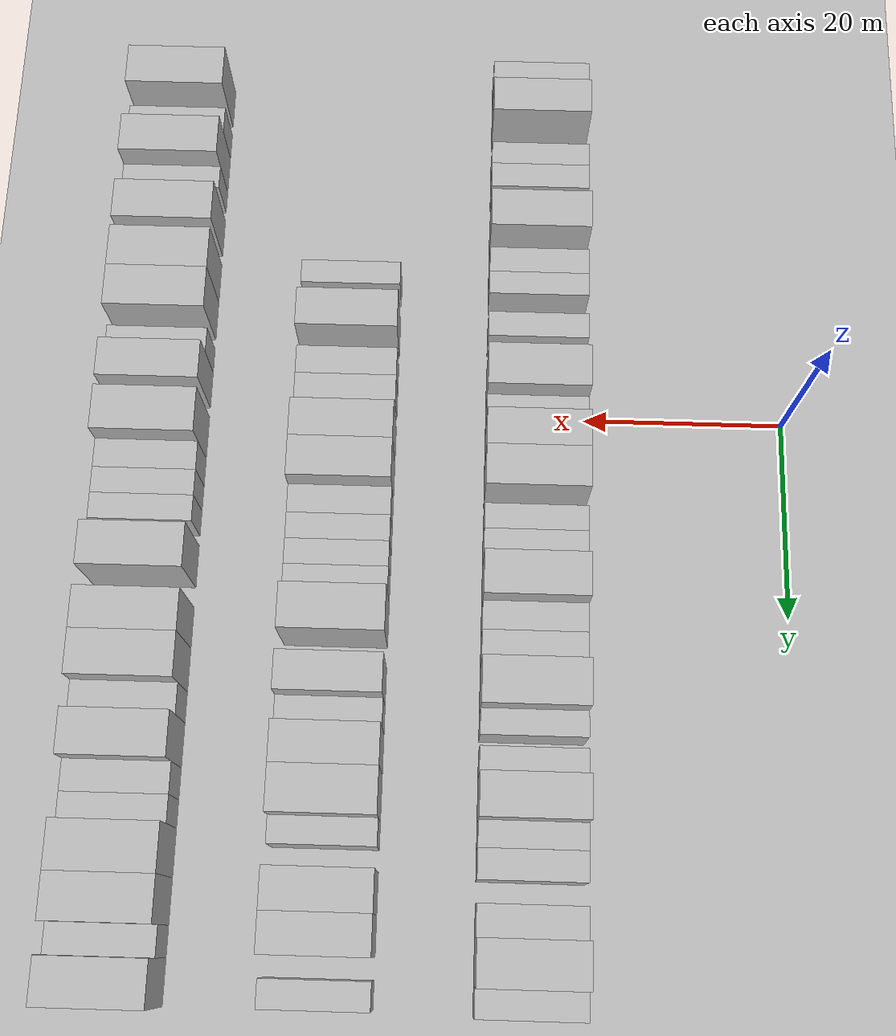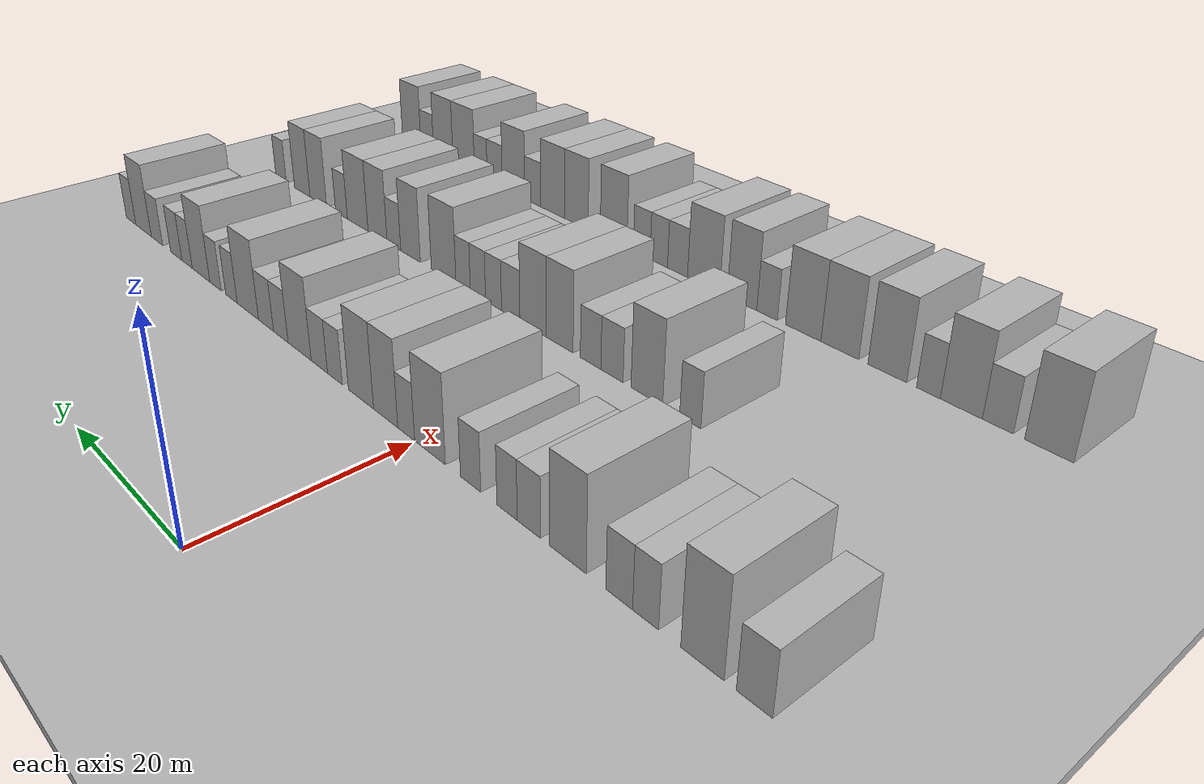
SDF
<sdf version="1.6">
 <world name="default">
  <include><name>ground_plane_1</name><uri>model://HANNAS_ground_plane</uri></include>
  <include>
   <name>ground_plane_2</name>
   <uri>model://HANNAS_ground_plane</uri>
   <pose>100 0 0  0 0 0</pose>
  </include>
  <model name="building_47">
   <static>1</static>
   <pose>25.0000 -36.6404 0 0.000000 0.000000 0.000000</pose>
   <link name="link">
    <pose>0 0 3.00 0 0 0</pose>
    <collision name="collision"><geometry><box><size>10.0000 2.9060 6.0000</size></box></geometry></collision>
    <visual name="visual">
     <cast_shadows>0</cast_shadows>
     <geometry><box><size>10.0000 2.9060 6.0000</size></box></geometry>
     <material>
      <script>
       <uri>model://HANNAS_wall/materials/scripts</uri>
       <uri>model://HANNAS_wall/materials/textures</uri>
       <name>vrc/HANNAS_wall</name>
      </script>
     </material>
    </visual>
   </link>
  </model>
  <model name="building_48">
   <static>1</static>
   <pose>25.0000 -32.3135 0 0.000000 0.000000 0.000000</pose>
   <link name="link">
    <pose>0 0 4.50 0 0 0</pose>
    <collision name="collision"><geometry><box><size>10.0000 3.7478 9.0000</size></box></geometry></collision>
    <visual name="visual">
     <cast_shadows>0</cast_shadows>
     <geometry><box><size>10.0000 3.7478 9.0000</size></box></geometry>
     <material>
      <script>
       <uri>model://HANNAS_wall/materials/scripts</uri>
       <uri>model://HANNAS_wall/materials/textures</uri>
       <name>vrc/HANNAS_wall</name>
      </script>
     </material>
    </visual>
   </link>
  </model>
  <model name="building_49">
   <static>1</static>
   <pose>25.0000 -27.2112 0 0.000000 0.000000 0.000000</pose>
   <link name="link">
    <pose>0 0 3.00 0 0 0</pose>
    <collision name="collision"><geometry><box><size>10.0000 2.4567 6.0000</size></box></geometry></collision>
    <visual name="visual">
     <cast_shadows>0</cast_shadows>
     <geometry><box><size>10.0000 2.4567 6.0000</size></box></geometry>
     <material>
      <script>
       <uri>model://HANNAS_wall/materials/scripts</uri>
       <uri>model://HANNAS_wall/materials/textures</uri>
       <name>vrc/HANNAS_wall</name>
      </script>
     </material>
    </visual>
   </link>
  </model>
  <model name="building_50">
   <static>1</static>
   <pose>25.0000 -24.6619 0 0.000000 0.000000 0.000000</pose>
   <link name="link">
    <pose>0 0 3.00 0 0 0</pose>
    <collision name="collision"><geometry><box><size>10.0000 2.6419 6.0000</size></box></geometry></collision>
    <visual name="visual">
     <cast_shadows>0</cast_shadows>
     <geometry><box><size>10.0000 2.6419 6.0000</size></box></geometry>
     <material>
      <script>
       <uri>model://HANNAS_wall/materials/scripts</uri>
       <uri>model://HANNAS_wall/materials/textures</uri>
       <name>vrc/HANNAS_wall</name>
      </script>
     </material>
    </visual>
   </link>
  </model>
  <model name="building_51">
   <static>1</static>
   <pose>25.0000 -19.3618 0 0.000000 0.000000 0.000000</pose>
   <link name="link">
    <pose>0 0 4.50 0 0 0</pose>
    <collision name="collision"><geometry><box><size>10.0000 3.9584 9.0000</size></box></geometry></collision>
    <visual name="visual">
     <cast_shadows>0</cast_shadows>
     <geometry><box><size>10.0000 3.9584 9.0000</size></box></geometry>
     <material>
      <script>
       <uri>model://HANNAS_wall/materials/scripts</uri>
       <uri>model://HANNAS_wall/materials/textures</uri>
       <name>vrc/HANNAS_wall</name>
      </script>
     </material>
    </visual>
   </link>
  </model>
  <model name="building_52">
   <static>1</static>
   <pose>25.0000 -15.0458 0 0.000000 0.000000 0.000000</pose>
   <link name="link">
    <pose>0 0 3.00 0 0 0</pose>
    <collision name="collision"><geometry><box><size>10.0000 2.6736 6.0000</size></box></geometry></collision>
    <visual name="visual">
     <cast_shadows>0</cast_shadows>
     <geometry><box><size>10.0000 2.6736 6.0000</size></box></geometry>
     <material>
      <script>
       <uri>model://HANNAS_wall/materials/scripts</uri>
       <uri>model://HANNAS_wall/materials/textures</uri>
       <name>vrc/HANNAS_wall</name>
      </script>
     </material>
    </visual>
   </link>
  </model>
  <model name="building_53">
   <static>1</static>
   <pose>25.0000 -12.4975 0 0.000000 0.000000 0.000000</pose>
   <link name="link">
    <pose>0 0 3.00 0 0 0</pose>
    <collision name="collision"><geometry><box><size>10.0000 2.4231 6.0000</size></box></geometry></collision>
    <visual name="visual">
     <cast_shadows>0</cast_shadows>
     <geometry><box><size>10.0000 2.4231 6.0000</size></box></geometry>
     <material>
      <script>
       <uri>model://HANNAS_wall/materials/scripts</uri>
       <uri>model://HANNAS_wall/materials/textures</uri>
       <name>vrc/HANNAS_wall</name>
      </script>
     </material>
    </visual>
   </link>
  </model>
  <model name="building_54">
   <static>1</static>
   <pose>25.0000 -7.9847 0 0.000000 0.000000 0.000000</pose>
   <link name="link">
    <pose>0 0 3.00 0 0 0</pose>
    <collision name="collision"><geometry><box><size>10.0000 2.6025 6.0000</size></box></geometry></collision>
    <visual name="visual">
     <cast_shadows>0</cast_shadows>
     <geometry><box><size>10.0000 2.6025 6.0000</size></box></geometry>
     <material>
      <script>
       <uri>model://HANNAS_wall/materials/scripts</uri>
       <uri>model://HANNAS_wall/materials/textures</uri>
       <name>vrc/HANNAS_wall</name>
      </script>
     </material>
    </visual>
   </link>
  </model>
  <model name="building_55">
   <static>1</static>
   <pose>25.0000 -2.5593 0 0.000000 0.000000 0.000000</pose>
   <link name="link">
    <pose>0 0 4.50 0 0 0</pose>
    <collision name="collision"><geometry><box><size>10.0000 4.2482 9.0000</size></box></geometry></collision>
    <visual name="visual">
     <cast_shadows>0</cast_shadows>
     <geometry><box><size>10.0000 4.2482 9.0000</size></box></geometry>
     <material>
      <script>
       <uri>model://HANNAS_wall/materials/scripts</uri>
       <uri>model://HANNAS_wall/materials/textures</uri>
       <name>vrc/HANNAS_wall</name>
      </script>
     </material>
    </visual>
   </link>
  </model>
  <model name="building_56">
   <static>1</static>
   <pose>25.0000 0.7866 0 0.000000 0.000000 0.000000</pose>
   <link name="link">
    <pose>0 0 3.00 0 0 0</pose>
    <collision name="collision"><geometry><box><size>10.0000 2.4436 6.0000</size></box></geometry></collision>
    <visual name="visual">
     <cast_shadows>0</cast_shadows>
     <geometry><box><size>10.0000 2.4436 6.0000</size></box></geometry>
     <material>
      <script>
       <uri>model://HANNAS_wall/materials/scripts</uri>
       <uri>model://HANNAS_wall/materials/textures</uri>
       <name>vrc/HANNAS_wall</name>
      </script>
     </material>
    </visual>
   </link>
  </model>
  <model name="building_57">
   <static>1</static>
   <pose>25.0000 3.8485 0 0.000000 0.000000 0.000000</pose>
   <link name="link">
    <pose>0 0 4.50 0 0 0</pose>
    <collision name="collision"><geometry><box><size>10.0000 3.6801 9.0000</size></box></geometry></collision>
    <visual name="visual">
     <cast_shadows>0</cast_shadows>
     <geometry><box><size>10.0000 3.6801 9.0000</size></box></geometry>
     <material>
      <script>
       <uri>model://HANNAS_wall/materials/scripts</uri>
       <uri>model://HANNAS_wall/materials/textures</uri>
       <name>vrc/HANNAS_wall</name>
      </script>
     </material>
    </visual>
   </link>
  </model>
  <model name="building_58">
   <static>1</static>
   <pose>25.0000 7.6979 0 0.000000 0.000000 0.000000</pose>
   <link name="link">
    <pose>0 0 4.50 0 0 0</pose>
    <collision name="collision"><geometry><box><size>10.0000 4.0188 9.0000</size></box></geometry></collision>
    <visual name="visual">
     <cast_shadows>0</cast_shadows>
     <geometry><box><size>10.0000 4.0188 9.0000</size></box></geometry>
     <material>
      <script>
       <uri>model://HANNAS_wall/materials/scripts</uri>
       <uri>model://HANNAS_wall/materials/textures</uri>
       <name>vrc/HANNAS_wall</name>
      </script>
     </material>
    </visual>
   </link>
  </model>
  <model name="building_59">
   <static>1</static>
   <pose>25.0000 11.9640 0 0.000000 0.000000 0.000000</pose>
   <link name="link">
    <pose>0 0 3.00 0 0 0</pose>
    <collision name="collision"><geometry><box><size>10.0000 2.5134 6.0000</size></box></geometry></collision>
    <visual name="visual">
     <cast_shadows>0</cast_shadows>
     <geometry><box><size>10.0000 2.5134 6.0000</size></box></geometry>
     <material>
      <script>
       <uri>model://HANNAS_wall/materials/scripts</uri>
       <uri>model://HANNAS_wall/materials/textures</uri>
       <name>vrc/HANNAS_wall</name>
      </script>
     </material>
    </visual>
   </link>
  </model>
  <model name="building_60">
   <static>1</static>
   <pose>25.0000 14.6396 0 0.000000 0.000000 0.000000</pose>
   <link name="link">
    <pose>0 0 3.00 0 0 0</pose>
    <collision name="collision"><geometry><box><size>10.0000 2.8378 6.0000</size></box></geometry></collision>
    <visual name="visual">
     <cast_shadows>0</cast_shadows>
     <geometry><box><size>10.0000 2.8378 6.0000</size></box></geometry>
     <material>
      <script>
       <uri>model://HANNAS_wall/materials/scripts</uri>
       <uri>model://HANNAS_wall/materials/textures</uri>
       <name>vrc/HANNAS_wall</name>
      </script>
     </material>
    </visual>
   </link>
  </model>
  <model name="building_61">
   <static>1</static>
   <pose>25.0000 18.1646 0 0.000000 0.000000 0.000000</pose>
   <link name="link">
    <pose>0 0 4.50 0 0 0</pose>
    <collision name="collision"><geometry><box><size>10.0000 4.2121 9.0000</size></box></geometry></collision>
    <visual name="visual">
     <cast_shadows>0</cast_shadows>
     <geometry><box><size>10.0000 4.2121 9.0000</size></box></geometry>
     <material>
      <script>
       <uri>model://HANNAS_wall/materials/scripts</uri>
       <uri>model://HANNAS_wall/materials/textures</uri>
       <name>vrc/HANNAS_wall</name>
      </script>
     </material>
    </visual>
   </link>
  </model>
  <model name="building_62">
   <static>1</static>
   <pose>25.0000 21.6608 0 0.000000 0.000000 0.000000</pose>
   <link name="link">
    <pose>0 0 3.00 0 0 0</pose>
    <collision name="collision"><geometry><box><size>10.0000 2.7804 6.0000</size></box></geometry></collision>
    <visual name="visual">
     <cast_shadows>0</cast_shadows>
     <geometry><box><size>10.0000 2.7804 6.0000</size></box></geometry>
     <material>
      <script>
       <uri>model://HANNAS_wall/materials/scripts</uri>
       <uri>model://HANNAS_wall/materials/textures</uri>
       <name>vrc/HANNAS_wall</name>
      </script>
     </material>
    </visual>
   </link>
  </model>
  <model name="building_63">
   <static>1</static>
   <pose>25.0000 24.5273 0 0.000000 0.000000 0.000000</pose>
   <link name="link">
    <pose>0 0 3.00 0 0 0</pose>
    <collision name="collision"><geometry><box><size>10.0000 2.9526 6.0000</size></box></geometry></collision>
    <visual name="visual">
     <cast_shadows>0</cast_shadows>
     <geometry><box><size>10.0000 2.9526 6.0000</size></box></geometry>
     <material>
      <script>
       <uri>model://HANNAS_wall/materials/scripts</uri>
       <uri>model://HANNAS_wall/materials/textures</uri>
       <name>vrc/HANNAS_wall</name>
      </script>
     </material>
    </visual>
   </link>
  </model>
  <model name="building_64">
   <static>1</static>
   <pose>25.0000 28.2015 0 0.000000 0.000000 0.000000</pose>
   <link name="link">
    <pose>0 0 4.50 0 0 0</pose>
    <collision name="collision"><geometry><box><size>10.0000 4.3956 9.0000</size></box></geometry></collision>
    <visual name="visual">
     <cast_shadows>0</cast_shadows>
     <geometry><box><size>10.0000 4.3956 9.0000</size></box></geometry>
     <material>
      <script>
       <uri>model://HANNAS_wall/materials/scripts</uri>
       <uri>model://HANNAS_wall/materials/textures</uri>
       <name>vrc/HANNAS_wall</name>
      </script>
     </material>
    </visual>
   </link>
  </model>
  <model name="building_65">
   <static>1</static>
   <pose>25.0000 31.6231 0 0.000000 0.000000 0.000000</pose>
   <link name="link">
    <pose>0 0 3.00 0 0 0</pose>
    <collision name="collision"><geometry><box><size>10.0000 2.4476 6.0000</size></box></geometry></collision>
    <visual name="visual">
     <cast_shadows>0</cast_shadows>
     <geometry><box><size>10.0000 2.4476 6.0000</size></box></geometry>
     <material>
      <script>
       <uri>model://HANNAS_wall/materials/scripts</uri>
       <uri>model://HANNAS_wall/materials/textures</uri>
       <name>vrc/HANNAS_wall</name>
      </script>
     </material>
    </visual>
   </link>
  </model>
  <model name="building_66">
   <static>1</static>
   <pose>25.0000 35.1179 0 0.000000 0.000000 0.000000</pose>
   <link name="link">
    <pose>0 0 3.00 0 0 0</pose>
    <collision name="collision"><geometry><box><size>10.0000 2.5420 6.0000</size></box></geometry></collision>
    <visual name="visual">
     <cast_shadows>0</cast_shadows>
     <geometry><box><size>10.0000 2.5420 6.0000</size></box></geometry>
     <material>
      <script>
       <uri>model://HANNAS_wall/materials/scripts</uri>
       <uri>model://HANNAS_wall/materials/textures</uri>
       <name>vrc/HANNAS_wall</name>
      </script>
     </material>
    </visual>
   </link>
  </model>
  <model name="building_67">
   <static>1</static>
   <pose>25.0000 38.4257 0 0.000000 0.000000 0.000000</pose>
   <link name="link">
    <pose>0 0 4.50 0 0 0</pose>
    <collision name="collision"><geometry><box><size>10.0000 4.0736 9.0000</size></box></geometry></collision>
    <visual name="visual">
     <cast_shadows>0</cast_shadows>
     <geometry><box><size>10.0000 4.0736 9.0000</size></box></geometry>
     <material>
      <script>
       <uri>model://HANNAS_wall/materials/scripts</uri>
       <uri>model://HANNAS_wall/materials/textures</uri>
       <name>vrc/HANNAS_wall</name>
      </script>
     </material>
    </visual>
   </link>
  </model>
  <model name="building_68">
   <static>1</static>
   <pose>25.0000 41.6944 0 0.000000 0.000000 0.000000</pose>
   <link name="link">
    <pose>0 0 3.00 0 0 0</pose>
    <collision name="collision"><geometry><box><size>10.0000 2.4639 6.0000</size></box></geometry></collision>
    <visual name="visual">
     <cast_shadows>0</cast_shadows>
     <geometry><box><size>10.0000 2.4639 6.0000</size></box></geometry>
     <material>
      <script>
       <uri>model://HANNAS_wall/materials/scripts</uri>
       <uri>model://HANNAS_wall/materials/textures</uri>
       <name>vrc/HANNAS_wall</name>
      </script>
     </material>
    </visual>
   </link>
  </model>
  <model name="building_69">
   <static>1</static>
   <pose>25.0000 44.3190 0 0.000000 0.000000 0.000000</pose>
   <link name="link">
    <pose>0 0 3.00 0 0 0</pose>
    <collision name="collision"><geometry><box><size>10.0000 2.7852 6.0000</size></box></geometry></collision>
    <visual name="visual">
     <cast_shadows>0</cast_shadows>
     <geometry><box><size>10.0000 2.7852 6.0000</size></box></geometry>
     <material>
      <script>
       <uri>model://HANNAS_wall/materials/scripts</uri>
       <uri>model://HANNAS_wall/materials/textures</uri>
       <name>vrc/HANNAS_wall</name>
      </script>
     </material>
    </visual>
   </link>
  </model>
  <model name="building_70">
   <static>1</static>
   <pose>25.0000 49.1778 0 0.000000 0.000000 0.000000</pose>
   <link name="link">
    <pose>0 0 3.00 0 0 0</pose>
    <collision name="collision"><geometry><box><size>10.0000 2.9324 6.0000</size></box></geometry></collision>
    <visual name="visual">
     <cast_shadows>0</cast_shadows>
     <geometry><box><size>10.0000 2.9324 6.0000</size></box></geometry>
     <material>
      <script>
       <uri>model://HANNAS_wall/materials/scripts</uri>
       <uri>model://HANNAS_wall/materials/textures</uri>
       <name>vrc/HANNAS_wall</name>
      </script>
     </material>
    </visual>
   </link>
  </model>
  <model name="building_71">
   <static>1</static>
   <pose>25.0000 52.7363 0 0.000000 0.000000 0.000000</pose>
   <link name="link">
    <pose>0 0 4.50 0 0 0</pose>
    <collision name="collision"><geometry><box><size>10.0000 4.1847 9.0000</size></box></geometry></collision>
    <visual name="visual">
     <cast_shadows>0</cast_shadows>
     <geometry><box><size>10.0000 4.1847 9.0000</size></box></geometry>
     <material>
      <script>
       <uri>model://HANNAS_wall/materials/scripts</uri>
       <uri>model://HANNAS_wall/materials/textures</uri>
       <name>vrc/HANNAS_wall</name>
      </script>
     </material>
    </visual>
   </link>
  </model>
  <model name="building_72">
   <static>1</static>
   <pose>25.0000 56.1334 0 0.000000 0.000000 0.000000</pose>
   <link name="link">
    <pose>0 0 3.00 0 0 0</pose>
    <collision name="collision"><geometry><box><size>10.0000 2.6096 6.0000</size></box></geometry></collision>
    <visual name="visual">
     <cast_shadows>0</cast_shadows>
     <geometry><box><size>10.0000 2.6096 6.0000</size></box></geometry>
     <material>
      <script>
       <uri>model://HANNAS_wall/materials/scripts</uri>
       <uri>model://HANNAS_wall/materials/textures</uri>
       <name>vrc/HANNAS_wall</name>
      </script>
     </material>
    </visual>
   </link>
  </model>
  <model name="building_163">
   <static>1</static>
   <pose>44.0000 -13.1867 0 0.000000 0.000000 0.000000</pose>
   <link name="link">
    <pose>0 0 3.00 0 0 0</pose>
    <collision name="collision"><geometry><box><size>10.0000 2.4471 6.0000</size></box></geometry></collision>
    <visual name="visual">
     <cast_shadows>0</cast_shadows>
     <geometry><box><size>10.0000 2.4471 6.0000</size></box></geometry>
     <material>
      <script>
       <uri>model://HANNAS_wall/materials/scripts</uri>
       <uri>model://HANNAS_wall/materials/textures</uri>
       <name>vrc/HANNAS_wall</name>
      </script>
     </material>
    </visual>
   </link>
  </model>
  <model name="building_164">
   <static>1</static>
   <pose>44.0000 -8.0142 0 0.000000 0.000000 0.000000</pose>
   <link name="link">
    <pose>0 0 4.50 0 0 0</pose>
    <collision name="collision"><geometry><box><size>10.0000 3.8978 9.0000</size></box></geometry></collision>
    <visual name="visual">
     <cast_shadows>0</cast_shadows>
     <geometry><box><size>10.0000 3.8978 9.0000</size></box></geometry>
     <material>
      <script>
       <uri>model://HANNAS_wall/materials/scripts</uri>
       <uri>model://HANNAS_wall/materials/textures</uri>
       <name>vrc/HANNAS_wall</name>
      </script>
     </material>
    </visual>
   </link>
  </model>
  <model name="building_165">
   <static>1</static>
   <pose>44.0000 -3.6147 0 0.000000 0.000000 0.000000</pose>
   <link name="link">
    <pose>0 0 3.00 0 0 0</pose>
    <collision name="collision"><geometry><box><size>10.0000 2.9012 6.0000</size></box></geometry></collision>
    <visual name="visual">
     <cast_shadows>0</cast_shadows>
     <geometry><box><size>10.0000 2.9012 6.0000</size></box></geometry>
     <material>
      <script>
       <uri>model://HANNAS_wall/materials/scripts</uri>
       <uri>model://HANNAS_wall/materials/textures</uri>
       <name>vrc/HANNAS_wall</name>
      </script>
     </material>
    </visual>
   </link>
  </model>
  <model name="building_166">
   <static>1</static>
   <pose>44.0000 -0.7822 0 0.000000 0.000000 0.000000</pose>
   <link name="link">
    <pose>0 0 3.00 0 0 0</pose>
    <collision name="collision"><geometry><box><size>10.0000 2.7638 6.0000</size></box></geometry></collision>
    <visual name="visual">
     <cast_shadows>0</cast_shadows>
     <geometry><box><size>10.0000 2.7638 6.0000</size></box></geometry>
     <material>
      <script>
       <uri>model://HANNAS_wall/materials/scripts</uri>
       <uri>model://HANNAS_wall/materials/textures</uri>
       <name>vrc/HANNAS_wall</name>
      </script>
     </material>
    </visual>
   </link>
  </model>
  <model name="building_167">
   <static>1</static>
   <pose>44.0000 3.4970 0 0.000000 0.000000 0.000000</pose>
   <link name="link">
    <pose>0 0 4.50 0 0 0</pose>
    <collision name="collision"><geometry><box><size>10.0000 3.7946 9.0000</size></box></geometry></collision>
    <visual name="visual">
     <cast_shadows>0</cast_shadows>
     <geometry><box><size>10.0000 3.7946 9.0000</size></box></geometry>
     <material>
      <script>
       <uri>model://HANNAS_wall/materials/scripts</uri>
       <uri>model://HANNAS_wall/materials/textures</uri>
       <name>vrc/HANNAS_wall</name>
      </script>
     </material>
    </visual>
   </link>
  </model>
  <model name="building_168">
   <static>1</static>
   <pose>44.0000 7.3764 0 0.000000 0.000000 0.000000</pose>
   <link name="link">
    <pose>0 0 4.50 0 0 0</pose>
    <collision name="collision"><geometry><box><size>10.0000 3.9643 9.0000</size></box></geometry></collision>
    <visual name="visual">
     <cast_shadows>0</cast_shadows>
     <geometry><box><size>10.0000 3.9643 9.0000</size></box></geometry>
     <material>
      <script>
       <uri>model://HANNAS_wall/materials/scripts</uri>
       <uri>model://HANNAS_wall/materials/textures</uri>
       <name>vrc/HANNAS_wall</name>
      </script>
     </material>
    </visual>
   </link>
  </model>
  <model name="building_169">
   <static>1</static>
   <pose>44.0000 10.7782 0 0.000000 0.000000 0.000000</pose>
   <link name="link">
    <pose>0 0 3.00 0 0 0</pose>
    <collision name="collision"><geometry><box><size>10.0000 2.8393 6.0000</size></box></geometry></collision>
    <visual name="visual">
     <cast_shadows>0</cast_shadows>
     <geometry><box><size>10.0000 2.8393 6.0000</size></box></geometry>
     <material>
      <script>
       <uri>model://HANNAS_wall/materials/scripts</uri>
       <uri>model://HANNAS_wall/materials/textures</uri>
       <name>vrc/HANNAS_wall</name>
      </script>
     </material>
    </visual>
   </link>
  </model>
  <model name="building_170">
   <static>1</static>
   <pose>44.0000 13.4813 0 0.000000 0.000000 0.000000</pose>
   <link name="link">
    <pose>0 0 3.00 0 0 0</pose>
    <collision name="collision"><geometry><box><size>10.0000 2.5668 6.0000</size></box></geometry></collision>
    <visual name="visual">
     <cast_shadows>0</cast_shadows>
     <geometry><box><size>10.0000 2.5668 6.0000</size></box></geometry>
     <material>
      <script>
       <uri>model://HANNAS_wall/materials/scripts</uri>
       <uri>model://HANNAS_wall/materials/textures</uri>
       <name>vrc/HANNAS_wall</name>
      </script>
     </material>
    </visual>
   </link>
  </model>
  <model name="building_171">
   <static>1</static>
   <pose>44.0000 16.0193 0 0.000000 0.000000 0.000000</pose>
   <link name="link">
    <pose>0 0 3.00 0 0 0</pose>
    <collision name="collision"><geometry><box><size>10.0000 2.5092 6.0000</size></box></geometry></collision>
    <visual name="visual">
     <cast_shadows>0</cast_shadows>
     <geometry><box><size>10.0000 2.5092 6.0000</size></box></geometry>
     <material>
      <script>
       <uri>model://HANNAS_wall/materials/scripts</uri>
       <uri>model://HANNAS_wall/materials/textures</uri>
       <name>vrc/HANNAS_wall</name>
      </script>
     </material>
    </visual>
   </link>
  </model>
  <model name="building_172">
   <static>1</static>
   <pose>44.0000 18.4997 0 0.000000 0.000000 0.000000</pose>
   <link name="link">
    <pose>0 0 3.00 0 0 0</pose>
    <collision name="collision"><geometry><box><size>10.0000 2.4517 6.0000</size></box></geometry></collision>
    <visual name="visual">
     <cast_shadows>0</cast_shadows>
     <geometry><box><size>10.0000 2.4517 6.0000</size></box></geometry>
     <material>
      <script>
       <uri>model://HANNAS_wall/materials/scripts</uri>
       <uri>model://HANNAS_wall/materials/textures</uri>
       <name>vrc/HANNAS_wall</name>
      </script>
     </material>
    </visual>
   </link>
  </model>
  <model name="building_173">
   <static>1</static>
   <pose>44.0000 21.8963 0 0.000000 0.000000 0.000000</pose>
   <link name="link">
    <pose>0 0 4.50 0 0 0</pose>
    <collision name="collision"><geometry><box><size>10.0000 4.3415 9.0000</size></box></geometry></collision>
    <visual name="visual">
     <cast_shadows>0</cast_shadows>
     <geometry><box><size>10.0000 4.3415 9.0000</size></box></geometry>
     <material>
      <script>
       <uri>model://HANNAS_wall/materials/scripts</uri>
       <uri>model://HANNAS_wall/materials/textures</uri>
       <name>vrc/HANNAS_wall</name>
      </script>
     </material>
    </visual>
   </link>
  </model>
  <model name="building_174">
   <static>1</static>
   <pose>44.0000 27.9106 0 0.000000 0.000000 0.000000</pose>
   <link name="link">
    <pose>0 0 4.50 0 0 0</pose>
    <collision name="collision"><geometry><box><size>10.0000 3.6871 9.0000</size></box></geometry></collision>
    <visual name="visual">
     <cast_shadows>0</cast_shadows>
     <geometry><box><size>10.0000 3.6871 9.0000</size></box></geometry>
     <material>
      <script>
       <uri>model://HANNAS_wall/materials/scripts</uri>
       <uri>model://HANNAS_wall/materials/textures</uri>
       <name>vrc/HANNAS_wall</name>
      </script>
     </material>
    </visual>
   </link>
  </model>
  <model name="building_175">
   <static>1</static>
   <pose>44.0000 31.0799 0 0.000000 0.000000 0.000000</pose>
   <link name="link">
    <pose>0 0 3.00 0 0 0</pose>
    <collision name="collision"><geometry><box><size>10.0000 2.6515 6.0000</size></box></geometry></collision>
    <visual name="visual">
     <cast_shadows>0</cast_shadows>
     <geometry><box><size>10.0000 2.6515 6.0000</size></box></geometry>
     <material>
      <script>
       <uri>model://HANNAS_wall/materials/scripts</uri>
       <uri>model://HANNAS_wall/materials/textures</uri>
       <name>vrc/HANNAS_wall</name>
      </script>
     </material>
    </visual>
   </link>
  </model>
  <model name="building_176">
   <static>1</static>
   <pose>44.0000 34.3299 0 0.000000 0.000000 0.000000</pose>
   <link name="link">
    <pose>0 0 4.50 0 0 0</pose>
    <collision name="collision"><geometry><box><size>10.0000 3.8486 9.0000</size></box></geometry></collision>
    <visual name="visual">
     <cast_shadows>0</cast_shadows>
     <geometry><box><size>10.0000 3.8486 9.0000</size></box></geometry>
     <material>
      <script>
       <uri>model://HANNAS_wall/materials/scripts</uri>
       <uri>model://HANNAS_wall/materials/textures</uri>
       <name>vrc/HANNAS_wall</name>
      </script>
     </material>
    </visual>
   </link>
  </model>
  <model name="building_177">
   <static>1</static>
   <pose>44.0000 38.4227 0 0.000000 0.000000 0.000000</pose>
   <link name="link">
    <pose>0 0 4.50 0 0 0</pose>
    <collision name="collision"><geometry><box><size>10.0000 4.3371 9.0000</size></box></geometry></collision>
    <visual name="visual">
     <cast_shadows>0</cast_shadows>
     <geometry><box><size>10.0000 4.3371 9.0000</size></box></geometry>
     <material>
      <script>
       <uri>model://HANNAS_wall/materials/scripts</uri>
       <uri>model://HANNAS_wall/materials/textures</uri>
       <name>vrc/HANNAS_wall</name>
      </script>
     </material>
    </visual>
   </link>
  </model>
  <model name="building_178">
   <static>1</static>
   <pose>44.0000 41.8672 0 0.000000 0.000000 0.000000</pose>
   <link name="link">
    <pose>0 0 3.00 0 0 0</pose>
    <collision name="collision"><geometry><box><size>10.0000 2.5519 6.0000</size></box></geometry></collision>
    <visual name="visual">
     <cast_shadows>0</cast_shadows>
     <geometry><box><size>10.0000 2.5519 6.0000</size></box></geometry>
     <material>
      <script>
       <uri>model://HANNAS_wall/materials/scripts</uri>
       <uri>model://HANNAS_wall/materials/textures</uri>
       <name>vrc/HANNAS_wall</name>
      </script>
     </material>
    </visual>
   </link>
  </model>
  <model name="building_179">
   <static>1</static>
   <pose>44.0000 47.0436 0 0.000000 0.000000 0.000000</pose>
   <link name="link">
    <pose>0 0 4.50 0 0 0</pose>
    <collision name="collision"><geometry><box><size>10.0000 3.8009 9.0000</size></box></geometry></collision>
    <visual name="visual">
     <cast_shadows>0</cast_shadows>
     <geometry><box><size>10.0000 3.8009 9.0000</size></box></geometry>
     <material>
      <script>
       <uri>model://HANNAS_wall/materials/scripts</uri>
       <uri>model://HANNAS_wall/materials/textures</uri>
       <name>vrc/HANNAS_wall</name>
      </script>
     </material>
    </visual>
   </link>
  </model>
  <model name="building_180">
   <static>1</static>
   <pose>44.0000 50.7753 0 0.000000 0.000000 0.000000</pose>
   <link name="link">
    <pose>0 0 4.50 0 0 0</pose>
    <collision name="collision"><geometry><box><size>10.0000 3.6625 9.0000</size></box></geometry></collision>
    <visual name="visual">
     <cast_shadows>0</cast_shadows>
     <geometry><box><size>10.0000 3.6625 9.0000</size></box></geometry>
     <material>
      <script>
       <uri>model://HANNAS_wall/materials/scripts</uri>
       <uri>model://HANNAS_wall/materials/textures</uri>
       <name>vrc/HANNAS_wall</name>
      </script>
     </material>
    </visual>
   </link>
  </model>
  <model name="building_181">
   <static>1</static>
   <pose>44.0000 55.8891 0 0.000000 0.000000 0.000000</pose>
   <link name="link">
    <pose>0 0 3.00 0 0 0</pose>
    <collision name="collision"><geometry><box><size>10.0000 2.5652 6.0000</size></box></geometry></collision>
    <visual name="visual">
     <cast_shadows>0</cast_shadows>
     <geometry><box><size>10.0000 2.5652 6.0000</size></box></geometry>
     <material>
      <script>
       <uri>model://HANNAS_wall/materials/scripts</uri>
       <uri>model://HANNAS_wall/materials/textures</uri>
       <name>vrc/HANNAS_wall</name>
      </script>
     </material>
    </visual>
   </link>
  </model>
  <model name="building_282">
   <static>1</static>
   <pose>63.0000 -34.7589 0 0.000000 0.000000 0.000000</pose>
   <link name="link">
    <pose>0 0 4.50 0 0 0</pose>
    <collision name="collision"><geometry><box><size>10.0000 4.2598 9.0000</size></box></geometry></collision>
    <visual name="visual">
     <cast_shadows>0</cast_shadows>
     <geometry><box><size>10.0000 4.2598 9.0000</size></box></geometry>
     <material>
      <script>
       <uri>model://HANNAS_wall/materials/scripts</uri>
       <uri>model://HANNAS_wall/materials/textures</uri>
       <name>vrc/HANNAS_wall</name>
      </script>
     </material>
    </visual>
   </link>
  </model>
  <model name="building_283">
   <static>1</static>
   <pose>63.0000 -30.2052 0 0.000000 0.000000 0.000000</pose>
   <link name="link">
    <pose>0 0 3.00 0 0 0</pose>
    <collision name="collision"><geometry><box><size>10.0000 2.8475 6.0000</size></box></geometry></collision>
    <visual name="visual">
     <cast_shadows>0</cast_shadows>
     <geometry><box><size>10.0000 2.8475 6.0000</size></box></geometry>
     <material>
      <script>
       <uri>model://HANNAS_wall/materials/scripts</uri>
       <uri>model://HANNAS_wall/materials/textures</uri>
       <name>vrc/HANNAS_wall</name>
      </script>
     </material>
    </visual>
   </link>
  </model>
  <model name="building_284">
   <static>1</static>
   <pose>63.0000 -26.7538 0 0.000000 0.000000 0.000000</pose>
   <link name="link">
    <pose>0 0 4.50 0 0 0</pose>
    <collision name="collision"><geometry><box><size>10.0000 4.0553 9.0000</size></box></geometry></collision>
    <visual name="visual">
     <cast_shadows>0</cast_shadows>
     <geometry><box><size>10.0000 4.0553 9.0000</size></box></geometry>
     <material>
      <script>
       <uri>model://HANNAS_wall/materials/scripts</uri>
       <uri>model://HANNAS_wall/materials/textures</uri>
       <name>vrc/HANNAS_wall</name>
      </script>
     </material>
    </visual>
   </link>
  </model>
  <model name="building_285">
   <static>1</static>
   <pose>63.0000 -23.5254 0 0.000000 0.000000 0.000000</pose>
   <link name="link">
    <pose>0 0 3.00 0 0 0</pose>
    <collision name="collision"><geometry><box><size>10.0000 2.4015 6.0000</size></box></geometry></collision>
    <visual name="visual">
     <cast_shadows>0</cast_shadows>
     <geometry><box><size>10.0000 2.4015 6.0000</size></box></geometry>
     <material>
      <script>
       <uri>model://HANNAS_wall/materials/scripts</uri>
       <uri>model://HANNAS_wall/materials/textures</uri>
       <name>vrc/HANNAS_wall</name>
      </script>
     </material>
    </visual>
   </link>
  </model>
  <model name="building_286">
   <static>1</static>
   <pose>63.0000 -19.2608 0 0.000000 0.000000 0.000000</pose>
   <link name="link">
    <pose>0 0 4.50 0 0 0</pose>
    <collision name="collision"><geometry><box><size>10.0000 4.1278 9.0000</size></box></geometry></collision>
    <visual name="visual">
     <cast_shadows>0</cast_shadows>
     <geometry><box><size>10.0000 4.1278 9.0000</size></box></geometry>
     <material>
      <script>
       <uri>model://HANNAS_wall/materials/scripts</uri>
       <uri>model://HANNAS_wall/materials/textures</uri>
       <name>vrc/HANNAS_wall</name>
      </script>
     </material>
    </visual>
   </link>
  </model>
  <model name="building_287">
   <static>1</static>
   <pose>63.0000 -14.0470 0 0.000000 0.000000 0.000000</pose>
   <link name="link">
    <pose>0 0 4.50 0 0 0</pose>
    <collision name="collision"><geometry><box><size>10.0000 4.2997 9.0000</size></box></geometry></collision>
    <visual name="visual">
     <cast_shadows>0</cast_shadows>
     <geometry><box><size>10.0000 4.2997 9.0000</size></box></geometry>
     <material>
      <script>
       <uri>model://HANNAS_wall/materials/scripts</uri>
       <uri>model://HANNAS_wall/materials/textures</uri>
       <name>vrc/HANNAS_wall</name>
      </script>
     </material>
    </visual>
   </link>
  </model>
  <model name="building_288">
   <static>1</static>
   <pose>63.0000 -9.7753 0 0.000000 0.000000 0.000000</pose>
   <link name="link">
    <pose>0 0 4.50 0 0 0</pose>
    <collision name="collision"><geometry><box><size>10.0000 4.2436 9.0000</size></box></geometry></collision>
    <visual name="visual">
     <cast_shadows>0</cast_shadows>
     <geometry><box><size>10.0000 4.2436 9.0000</size></box></geometry>
     <material>
      <script>
       <uri>model://HANNAS_wall/materials/scripts</uri>
       <uri>model://HANNAS_wall/materials/textures</uri>
       <name>vrc/HANNAS_wall</name>
      </script>
     </material>
    </visual>
   </link>
  </model>
  <model name="building_289">
   <static>1</static>
   <pose>63.0000 -5.3590 0 0.000000 0.000000 0.000000</pose>
   <link name="link">
    <pose>0 0 3.00 0 0 0</pose>
    <collision name="collision"><geometry><box><size>10.0000 2.5890 6.0000</size></box></geometry></collision>
    <visual name="visual">
     <cast_shadows>0</cast_shadows>
     <geometry><box><size>10.0000 2.5890 6.0000</size></box></geometry>
     <material>
      <script>
       <uri>model://HANNAS_wall/materials/scripts</uri>
       <uri>model://HANNAS_wall/materials/textures</uri>
       <name>vrc/HANNAS_wall</name>
      </script>
     </material>
    </visual>
   </link>
  </model>
  <model name="building_290">
   <static>1</static>
   <pose>63.0000 -2.1242 0 0.000000 0.000000 0.000000</pose>
   <link name="link">
    <pose>0 0 4.50 0 0 0</pose>
    <collision name="collision"><geometry><box><size>10.0000 3.8808 9.0000</size></box></geometry></collision>
    <visual name="visual">
     <cast_shadows>0</cast_shadows>
     <geometry><box><size>10.0000 3.8808 9.0000</size></box></geometry>
     <material>
      <script>
       <uri>model://HANNAS_wall/materials/scripts</uri>
       <uri>model://HANNAS_wall/materials/textures</uri>
       <name>vrc/HANNAS_wall</name>
      </script>
     </material>
    </visual>
   </link>
  </model>
  <model name="building_291">
   <static>1</static>
   <pose>63.0000 3.0534 0 0.000000 0.000000 0.000000</pose>
   <link name="link">
    <pose>0 0 4.50 0 0 0</pose>
    <collision name="collision"><geometry><box><size>10.0000 4.4744 9.0000</size></box></geometry></collision>
    <visual name="visual">
     <cast_shadows>0</cast_shadows>
     <geometry><box><size>10.0000 4.4744 9.0000</size></box></geometry>
     <material>
      <script>
       <uri>model://HANNAS_wall/materials/scripts</uri>
       <uri>model://HANNAS_wall/materials/textures</uri>
       <name>vrc/HANNAS_wall</name>
      </script>
     </material>
    </visual>
   </link>
  </model>
  <model name="building_292">
   <static>1</static>
   <pose>63.0000 6.7384 0 0.000000 0.000000 0.000000</pose>
   <link name="link">
    <pose>0 0 3.00 0 0 0</pose>
    <collision name="collision"><geometry><box><size>10.0000 2.8956 6.0000</size></box></geometry></collision>
    <visual name="visual">
     <cast_shadows>0</cast_shadows>
     <geometry><box><size>10.0000 2.8956 6.0000</size></box></geometry>
     <material>
      <script>
       <uri>model://HANNAS_wall/materials/scripts</uri>
       <uri>model://HANNAS_wall/materials/textures</uri>
       <name>vrc/HANNAS_wall</name>
      </script>
     </material>
    </visual>
   </link>
  </model>
  <model name="building_293">
   <static>1</static>
   <pose>63.0000 9.4797 0 0.000000 0.000000 0.000000</pose>
   <link name="link">
    <pose>0 0 3.00 0 0 0</pose>
    <collision name="collision"><geometry><box><size>10.0000 2.5870 6.0000</size></box></geometry></collision>
    <visual name="visual">
     <cast_shadows>0</cast_shadows>
     <geometry><box><size>10.0000 2.5870 6.0000</size></box></geometry>
     <material>
      <script>
       <uri>model://HANNAS_wall/materials/scripts</uri>
       <uri>model://HANNAS_wall/materials/textures</uri>
       <name>vrc/HANNAS_wall</name>
      </script>
     </material>
    </visual>
   </link>
  </model>
  <model name="building_294">
   <static>1</static>
   <pose>63.0000 12.0619 0 0.000000 0.000000 0.000000</pose>
   <link name="link">
    <pose>0 0 3.00 0 0 0</pose>
    <collision name="collision"><geometry><box><size>10.0000 2.5773 6.0000</size></box></geometry></collision>
    <visual name="visual">
     <cast_shadows>0</cast_shadows>
     <geometry><box><size>10.0000 2.5773 6.0000</size></box></geometry>
     <material>
      <script>
       <uri>model://HANNAS_wall/materials/scripts</uri>
       <uri>model://HANNAS_wall/materials/textures</uri>
       <name>vrc/HANNAS_wall</name>
      </script>
     </material>
    </visual>
   </link>
  </model>
  <model name="building_295">
   <static>1</static>
   <pose>63.0000 16.4858 0 0.000000 0.000000 0.000000</pose>
   <link name="link">
    <pose>0 0 4.50 0 0 0</pose>
    <collision name="collision"><geometry><box><size>10.0000 4.2705 9.0000</size></box></geometry></collision>
    <visual name="visual">
     <cast_shadows>0</cast_shadows>
     <geometry><box><size>10.0000 4.2705 9.0000</size></box></geometry>
     <material>
      <script>
       <uri>model://HANNAS_wall/materials/scripts</uri>
       <uri>model://HANNAS_wall/materials/textures</uri>
       <name>vrc/HANNAS_wall</name>
      </script>
     </material>
    </visual>
   </link>
  </model>
  <model name="building_296">
   <static>1</static>
   <pose>63.0000 22.6328 0 0.000000 0.000000 0.000000</pose>
   <link name="link">
    <pose>0 0 4.50 0 0 0</pose>
    <collision name="collision"><geometry><box><size>10.0000 4.0236 9.0000</size></box></geometry></collision>
    <visual name="visual">
     <cast_shadows>0</cast_shadows>
     <geometry><box><size>10.0000 4.0236 9.0000</size></box></geometry>
     <material>
      <script>
       <uri>model://HANNAS_wall/materials/scripts</uri>
       <uri>model://HANNAS_wall/materials/textures</uri>
       <name>vrc/HANNAS_wall</name>
      </script>
     </material>
    </visual>
   </link>
  </model>
  <model name="building_297">
   <static>1</static>
   <pose>63.0000 26.7725 0 0.000000 0.000000 0.000000</pose>
   <link name="link">
    <pose>0 0 4.50 0 0 0</pose>
    <collision name="collision"><geometry><box><size>10.0000 4.2557 9.0000</size></box></geometry></collision>
    <visual name="visual">
     <cast_shadows>0</cast_shadows>
     <geometry><box><size>10.0000 4.2557 9.0000</size></box></geometry>
     <material>
      <script>
       <uri>model://HANNAS_wall/materials/scripts</uri>
       <uri>model://HANNAS_wall/materials/textures</uri>
       <name>vrc/HANNAS_wall</name>
      </script>
     </material>
    </visual>
   </link>
  </model>
  <model name="building_298">
   <static>1</static>
   <pose>63.0000 30.3787 0 0.000000 0.000000 0.000000</pose>
   <link name="link">
    <pose>0 0 3.00 0 0 0</pose>
    <collision name="collision"><geometry><box><size>10.0000 2.9568 6.0000</size></box></geometry></collision>
    <visual name="visual">
     <cast_shadows>0</cast_shadows>
     <geometry><box><size>10.0000 2.9568 6.0000</size></box></geometry>
     <material>
      <script>
       <uri>model://HANNAS_wall/materials/scripts</uri>
       <uri>model://HANNAS_wall/materials/textures</uri>
       <name>vrc/HANNAS_wall</name>
      </script>
     </material>
    </visual>
   </link>
  </model>
  <model name="building_299">
   <static>1</static>
   <pose>63.0000 33.9895 0 0.000000 0.000000 0.000000</pose>
   <link name="link">
    <pose>0 0 4.50 0 0 0</pose>
    <collision name="collision"><geometry><box><size>10.0000 4.2648 9.0000</size></box></geometry></collision>
    <visual name="visual">
     <cast_shadows>0</cast_shadows>
     <geometry><box><size>10.0000 4.2648 9.0000</size></box></geometry>
     <material>
      <script>
       <uri>model://HANNAS_wall/materials/scripts</uri>
       <uri>model://HANNAS_wall/materials/textures</uri>
       <name>vrc/HANNAS_wall</name>
      </script>
     </material>
    </visual>
   </link>
  </model>
  <model name="building_300">
   <static>1</static>
   <pose>63.0000 37.6013 0 0.000000 0.000000 0.000000</pose>
   <link name="link">
    <pose>0 0 3.00 0 0 0</pose>
    <collision name="collision"><geometry><box><size>10.0000 2.9587 6.0000</size></box></geometry></collision>
    <visual name="visual">
     <cast_shadows>0</cast_shadows>
     <geometry><box><size>10.0000 2.9587 6.0000</size></box></geometry>
     <material>
      <script>
       <uri>model://HANNAS_wall/materials/scripts</uri>
       <uri>model://HANNAS_wall/materials/textures</uri>
       <name>vrc/HANNAS_wall</name>
      </script>
     </material>
    </visual>
   </link>
  </model>
  <model name="building_301">
   <static>1</static>
   <pose>63.0000 40.3722 0 0.000000 0.000000 0.000000</pose>
   <link name="link">
    <pose>0 0 3.00 0 0 0</pose>
    <collision name="collision"><geometry><box><size>10.0000 2.5832 6.0000</size></box></geometry></collision>
    <visual name="visual">
     <cast_shadows>0</cast_shadows>
     <geometry><box><size>10.0000 2.5832 6.0000</size></box></geometry>
     <material>
      <script>
       <uri>model://HANNAS_wall/materials/scripts</uri>
       <uri>model://HANNAS_wall/materials/textures</uri>
       <name>vrc/HANNAS_wall</name>
      </script>
     </material>
    </visual>
   </link>
  </model>
  <model name="building_302">
   <static>1</static>
   <pose>63.0000 43.9090 0 0.000000 0.000000 0.000000</pose>
   <link name="link">
    <pose>0 0 4.50 0 0 0</pose>
    <collision name="collision"><geometry><box><size>10.0000 4.4905 9.0000</size></box></geometry></collision>
    <visual name="visual">
     <cast_shadows>0</cast_shadows>
     <geometry><box><size>10.0000 4.4905 9.0000</size></box></geometry>
     <material>
      <script>
       <uri>model://HANNAS_wall/materials/scripts</uri>
       <uri>model://HANNAS_wall/materials/textures</uri>
       <name>vrc/HANNAS_wall</name>
      </script>
     </material>
    </visual>
   </link>
  </model>
  <model name="building_303">
   <static>1</static>
   <pose>63.0000 48.2661 0 0.000000 0.000000 0.000000</pose>
   <link name="link">
    <pose>0 0 4.50 0 0 0</pose>
    <collision name="collision"><geometry><box><size>10.0000 4.2237 9.0000</size></box></geometry></collision>
    <visual name="visual">
     <cast_shadows>0</cast_shadows>
     <geometry><box><size>10.0000 4.2237 9.0000</size></box></geometry>
     <material>
      <script>
       <uri>model://HANNAS_wall/materials/scripts</uri>
       <uri>model://HANNAS_wall/materials/textures</uri>
       <name>vrc/HANNAS_wall</name>
      </script>
     </material>
    </visual>
   </link>
  </model>
  <model name="building_304">
   <static>1</static>
   <pose>63.0000 51.7929 0 0.000000 0.000000 0.000000</pose>
   <link name="link">
    <pose>0 0 3.00 0 0 0</pose>
    <collision name="collision"><geometry><box><size>10.0000 2.8300 6.0000</size></box></geometry></collision>
    <visual name="visual">
     <cast_shadows>0</cast_shadows>
     <geometry><box><size>10.0000 2.8300 6.0000</size></box></geometry>
     <material>
      <script>
       <uri>model://HANNAS_wall/materials/scripts</uri>
       <uri>model://HANNAS_wall/materials/textures</uri>
       <name>vrc/HANNAS_wall</name>
      </script>
     </material>
    </visual>
   </link>
  </model>
  <model name="building_305">
   <static>1</static>
   <pose>63.0000 55.3260 0 0.000000 0.000000 0.000000</pose>
   <link name="link">
    <pose>0 0 4.50 0 0 0</pose>
    <collision name="collision"><geometry><box><size>10.0000 4.2361 9.0000</size></box></geometry></collision>
    <visual name="visual">
     <cast_shadows>0</cast_shadows>
     <geometry><box><size>10.0000 4.2361 9.0000</size></box></geometry>
     <material>
      <script>
       <uri>model://HANNAS_wall/materials/scripts</uri>
       <uri>model://HANNAS_wall/materials/textures</uri>
       <name>vrc/HANNAS_wall</name>
      </script>
     </material>
    </visual>
   </link>
  </model>
 </world>
</sdf>
